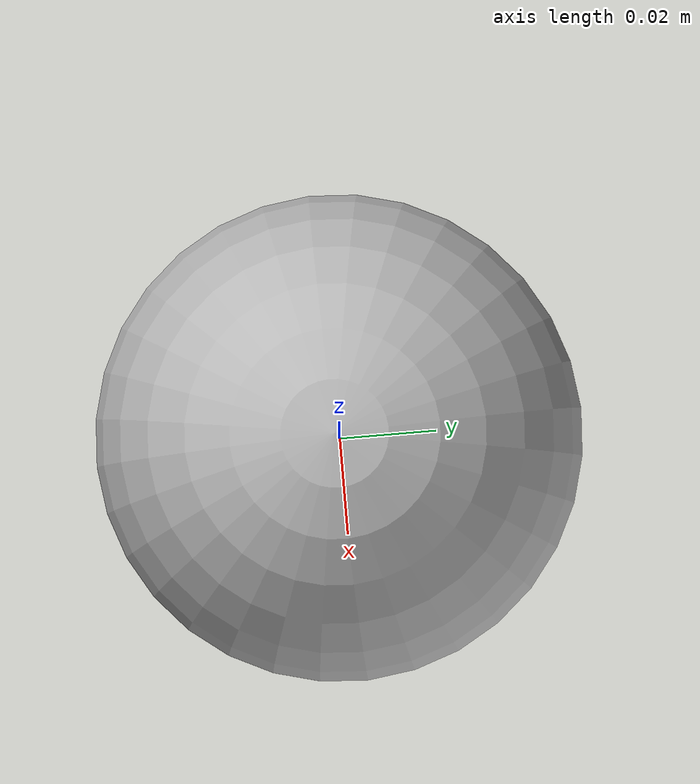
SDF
<?xml version='1.0'?>
<sdf version='1.7'>
  <model name='watermelon'>
    <link name='link'>
      <self_collide>0</self_collide>
      <inertial>
        <pose>0 0 0 0 -0 0</pose>
        <inertia>
          <ixx>0.00220983</ixx>
          <ixy>0</ixy>
          <ixz>0</ixz>
          <iyy>0.00128087</iyy>
          <iyz>0</iyz>
          <izz>0.00244903</izz>
        </inertia>
        <mass>0.1</mass>
      </inertial>
      <enable_wind>0</enable_wind>
      <kinematic>0</kinematic>
      <pose>0 0 0 0 -0 0</pose>
      <gravity>1</gravity>
      <visual name='visual1'>
        <cast_shadows>0</cast_shadows>
        <geometry>
          <mesh>
            <uri>model://watermelon/meshes/watermellon.dae</uri>
          </mesh>
        </geometry>
        <material>
          <shader type='pixel'>
            <normal_map>__default__</normal_map>
          </shader>
          <emissive>0 0 0 1</emissive>
        </material>
        <pose>0 0 -0.0 0 -0 0</pose>
        <transparency>0</transparency>
      </visual>
      <collision name='collision_0'>
        <laser_retro>0</laser_retro>
        <max_contacts>1</max_contacts>
        <pose>0 0 0 0 -0 0</pose>
        <geometry>
          <box>
            <size>0.1 0.1 0.126</size>
          </box>
        </geometry>
        <surface>
          <friction>
            <ode>
              <mu>1</mu>
              <mu2>1</mu2>
              <fdir1>0 0 0</fdir1>
              <slip1>0</slip1>
              <slip2>0</slip2>
            </ode>
            <torsional>
              <coefficient>1</coefficient>
              <patch_radius>0</patch_radius>
              <surface_radius>0</surface_radius>
              <use_patch_radius>1</use_patch_radius>
              <ode>
                <slip>0</slip>
              </ode>
            </torsional>
          </friction>
          <bounce>
            <restitution_coefficient>0</restitution_coefficient>
            <threshold>1e+06</threshold>
          </bounce>
          <contact>
            <collide_without_contact>0</collide_without_contact>
            <collide_without_contact_bitmask>1</collide_without_contact_bitmask>
            <collide_bitmask>1</collide_bitmask>
            <ode>
              <soft_cfm>0</soft_cfm>
              <soft_erp>0.2</soft_erp>
              <kp>1e+13</kp>
              <kd>1</kd>
              <max_vel>0.01</max_vel>
              <min_depth>0</min_depth>
            </ode>
            <bullet>
              <split_impulse>1</split_impulse>
              <split_impulse_penetration_threshold>-0.01</split_impulse_penetration_threshold>
              <soft_cfm>0</soft_cfm>
              <soft_erp>0.2</soft_erp>
              <kp>1e+13</kp>
              <kd>1</kd>
            </bullet>
          </contact>
        </surface>
      </collision>
    </link>
    <static>0</static>
    <allow_auto_disable>1</allow_auto_disable>
  </model>
</sdf>
